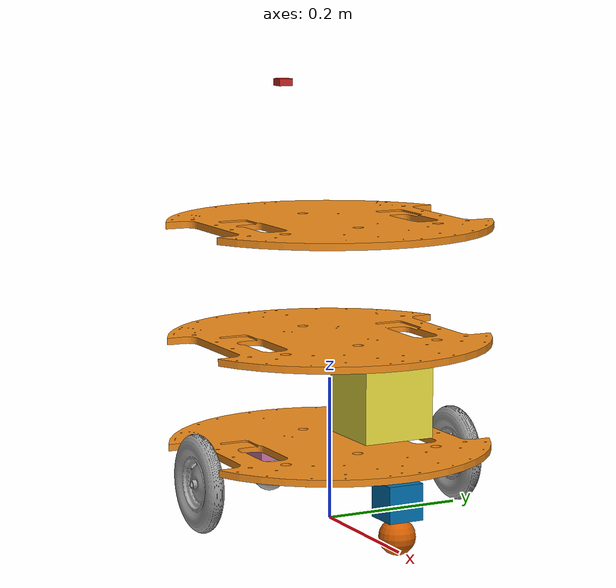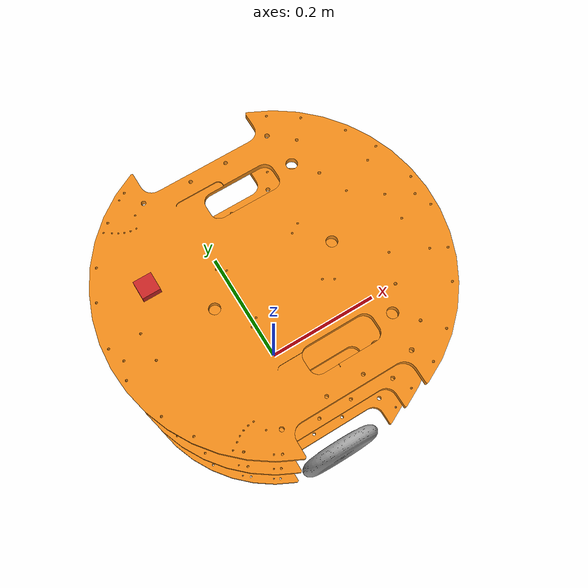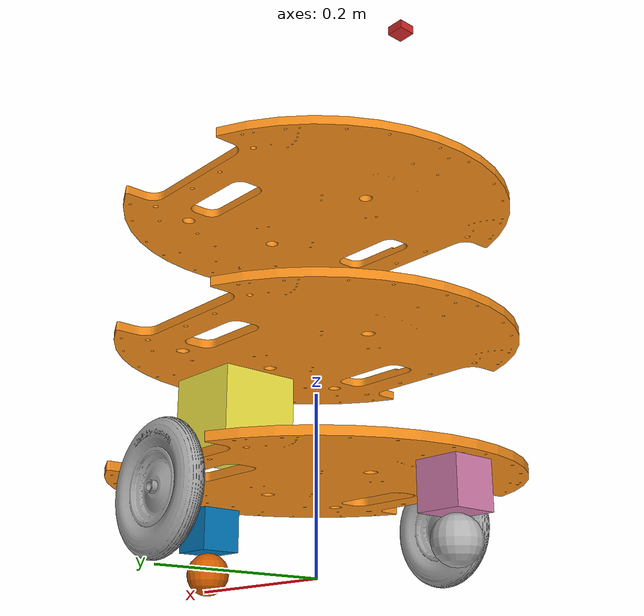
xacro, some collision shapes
<?xml version="1.0"?>

<robot name="robko18" xmlns:xacro="http://www.ros.org/wiki/xacro">

  <xacro:include filename="$(find robko18_description)/urdf/robko18.gazebo" />
  <xacro:include filename="$(find robko18_description)/urdf/materials.xacro" />
  <xacro:include filename="$(find robko18_description)/urdf/macros.xacro" />
  <!-- 3D Sensors -->

  <!-- ####### generic constants ##### -->
  <!--All units in m-kg-s-radians unit system -->

  <xacro:property name="M_PI" value="3.1415926535897931" />
  <xacro:property name="M_PI_2" value="1.570796327" />
  <xacro:property name="DEG_TO_RAD" value="0.017453293" />
  <xacro:property name="SCALE_in_m" value="0.0254"/> <!--inches to meters-->
  <xacro:property name="SCALE_mm_m" value="0.001"/> <!--milimeters to meters-->

   <!-- robot constants -->

    <!-- Main body radius and height -->
  <!-- base_link - Base Plate/Deck Cylinder base   -->
  <xacro:property name="base_from_base_frame_Z_offset" value="0.10"/>
  <xacro:property name="base_height" value="${0.375*SCALE_in_m}" />
  <xacro:property name="base_radius" value="${17.75*SCALE_in_m/2}" />
  <!-- in kg weight with the battery holder plate bellow -->
  <xacro:property name="base_mass" value="1.75" />

   <!-- distance between the robot origin and the bottom of the base plate along the z axis (robot up) -->
  <xacro:property name="BASE_PLATE_FROM_BASE_FRAME_Z_OFFSET" value="${0.10+(base_height/2)}" /> <!-- meters -->

 <!-- second_deck - Base Plate/Deck Cylinder base   -->
  <xacro:property name="second_deck_from_base_link_Z_offset" value="${0.145+(second_deck_height/2)}"/>
  <xacro:property name="second_deck_height" value="${0.375*SCALE_in_m}" />
  <xacro:property name="second_deck_radius" value="${17.75*SCALE_in_m/2}" />
  <xacro:property name="second_deck_mass" value="1.5" />   <!-- in kg -->

  <!-- third_deck - Base Plate/Deck Cylinder base   -->
  <xacro:property name="third_deck_from_second_deck_Z_offset" value="${0.156+(third_deck_height/2)}"/>
  <xacro:property name="third_deck_height" value="${0.375*SCALE_in_m}" />
  <xacro:property name="third_deck_radius" value="${17.75*SCALE_in_m/2}" />
  <xacro:property name="third_deck_mass" value="1.5" />   <!-- in kg -->

 <!-- kinect_mount_point - joint data for maunting kinect relative to base_link  -->
  <xacro:property name="kinect_mount_point_from_base_link_Z_offset" value="0.50" />
  <xacro:property name="kinect_mount_point_from_base_link_X_offset" value="-${0.14509}"/>
  <xacro:property name="kinect_support_height" value="0.02" />
  <xacro:property name="kinect_support_width" value="0.01" />
  <xacro:property name="kinect_support_lenght" value="0.02" />
  <xacro:property name="kinect_support_mass" value=".05" />    <!--in kg-->

  <!-- Wheels -->
  <xacro:property name="wheel_diameter" value="${6*SCALE_in_m}"/>
  <xacro:property name="wheel_radius" value="${wheel_diameter/2}"/>
  <xacro:property name="wheel_width" value="0.03"/><!--set to tyre width-->
  <xacro:property name="wheel_mass" value="0.6" /> --> <!-- ???? in kg-->
  <xacro:property name="base_x_origin_to_wheel_origin" value="0.0" />
  <xacro:property name="base_y_origin_to_wheel_origin" value="0.2" />
  <xacro:property name="base_z_origin_to_wheel_origin" value="${BASE_PLATE_FROM_BASE_FRAME_Z_OFFSET - wheel_radius}" />

  <!-- caster wheel offsets from base origin -->
  <xacro:property name="caster_X_offset_from_base_link" value="0.17"/>
  <!-- caster wheel radius and height -->
  <!-- caster wheel mass -->
  <xacro:property name="caster_box_mass" value="0.15" /> <!-- in kg-->
  <xacro:property name="caster_box_height" value="0.05" />
  <xacro:property name="caster_box_width" value="0.05" />
  <xacro:property name="caster_box_lenght" value="0.05" />
  <xacro:property name="caster_sphere_mass" value="0.15" /> <!-- in kg-->
  <xacro:property name="caster_sphere_diameter" value="0.05" />
  <xacro:property name="caster_sphere_radius" value="${caster_sphere_diameter/2}" />

  <!-- SENSORS -->
  <!-- Hokuyo Laser scanner -->
  <xacro:property name="hokuyo_size" value="0.05" />
    <!-- camera -->
  <xacro:property name="cameraSize" value="0.05"/>
  <xacro:property name="cameraMass" value="0.1"/>

 <!-- base_footprint is a fictitious link(frame) that is on the ground right below base_link origin -->
  <link name="base_footprint">
    <inertial>
      <mass value="0.0001"/>
      <origin xyz="0 0 0"/>
      <inertia ixx="0.0001" ixy="0.0" ixz="0.0" iyy="0.0001" iyz="0.0" izz="0.0001"/>
    </inertial>
    <visual>
      <origin rpy="0 0 0" xyz="0 0 0"/>
      <geometry>
        <box size="0.001 0.001 0.001"/>
      </geometry>
      <material name="red"/>
    </visual>
  </link>
  <gazebo reference="base_footprint">
    <turnGravityOff>false</turnGravityOff>
  </gazebo>

  <!-- JOINT BASE_LINK TO BASE_FRAME-->
  <joint name="base_footprint_base_link_joint" type="fixed">
    <origin rpy="0 0 0" xyz="0 0 ${base_from_base_frame_Z_offset}"/>
    <parent link="base_footprint"/>
    <child link="base_link"/>
  </joint>

  <!-- BASE-LINK -->
  <!--Center on the bottom side of the base plate of the robot-->

  <link name="base_link">
    <pose>0 0 0.1 0 0 0</pose>

    <inertial>
      <mass value="${base_mass}"/>
      <origin xyz="0.0 0 0.1" rpy=" 0 0 0"/>
      <inertia
          ixx="0.1" ixy="0" ixz="0"
          iyy="0.1" iyz="0"
          izz="0.1"
      />
    </inertial>

    <collision name="collision">
      <geometry>
       <cylinder radius="${base_radius}" length="${base_height}"/>
      </geometry>
    </collision>

    <visual name="base_visual">
      <origin xyz="0 0 0" rpy="${M_PI_2} 0 ${M_PI_2}"/>
      <geometry>
        <mesh filename="package://robko18_description/meshes/ArloBottomplateTST.dae" scale="0.001 0.001 0.001"/>

      </geometry>
      <material name="orange"/>
    </visual>

  </link>

  <link name="left_wheel">
    <collision name="collision">
      <origin xyz="0 0 0" rpy="0 1.5707 1.5707"/>
      <geometry>
        <cylinder radius="${wheel_radius}" length="${wheel_width}"/>
      </geometry>
    </collision>
    <visual name="left_wheel_visual">
      <origin xyz="0 0 0" rpy="0 0 1.5707"/>
      <geometry>
        <mesh filename="package://robko18_description/meshes/wheel.dae" scale="0.0012 0.0012 0.0012"/>

      </geometry>
    </visual>
    <inertial>
      <origin xyz="0 0 0" rpy="0 1.5707 1.5707"/>
      <mass value="5"/>
      <inertia
        ixx=".1" ixy="0.0" ixz="0.0"
        iyy=".1" iyz="0.0"
        izz=".1"/>
    </inertial>
  </link>

  <link name="right_wheel">
    <collision name="collision">
      <origin xyz="0 0 0" rpy="0 1.5707 1.5707"/>
      <geometry>
        <cylinder radius="${wheel_radius}" length="${wheel_width}"/>
      </geometry>
    </collision>
    <visual name="right_wheel_visual">
      <origin xyz="0 0 0" rpy="0 0 1.5707"/>
      <geometry>
        <mesh filename="package://robko18_description/meshes/wheel.dae" scale="0.0012 0.0012 0.0012"/>

      </geometry>
    </visual>
    <inertial>
      <origin xyz="0 0 0" rpy="0 1.5707 1.5707"/>
      <mass value="5"/>
      <inertia
        ixx=".1" ixy="0.0" ixz="0.0"
        iyy=".1" iyz="0.0"
        izz=".1"/>
    </inertial>
  </link>

  <joint type="continuous" name="left_wheel_hinge">
    <origin xyz="0 ${base_y_origin_to_wheel_origin} -${base_z_origin_to_wheel_origin}" rpy="0 0 0"/>

    <child link="left_wheel"/>
    <parent link="base_link"/>
    <axis xyz="0 1 0" rpy="0 0 0"/>
    <limit effort="10000" velocity="1000"/>
    <joint_properties damping="1.0" friction="1.0"/>
  </joint>

  <joint type="continuous" name="right_wheel_hinge">
    <origin xyz="0 -${base_y_origin_to_wheel_origin} -${base_z_origin_to_wheel_origin}" rpy="0 0 0"/>
    <child link="right_wheel"/>
    <parent link="base_link"/>
    <axis xyz="0 1 0" rpy="0 0 0"/>
    <limit effort="10000" velocity="1000"/>
    <joint_properties damping="1.0" friction="1.0"/>
  </joint>

<!--###########caster front #############################-->
  <link name="caster_box_front">
    <collision name="collision">
      <origin xyz="0 0 0" rpy="0 0 0"/>
      <geometry>
        <box size="${caster_box_width} ${caster_box_height} ${caster_box_lenght}"/>
      </geometry>
    </collision>
    <visual name="caster_box_front_visual">
      <origin xyz="0 0 0" rpy="0 0 0"/>
      <geometry>
        <box size="${caster_box_width} ${caster_box_height} ${caster_box_lenght}"/>
      </geometry>
    </visual>
    <inertial>
      <origin xyz="0 0 0" rpy="0 0 0"/>
      <mass value="0.15"/>
      <inertia
        ixx=".1" ixy="0.0" ixz="0.0"
        iyy=".1" iyz="0.0"
        izz=".1"/>
    </inertial>
  </link>

    <!-- JOINT caster_box_front TO base_link-->
  <joint name="base_caster_box_front_joint" type="fixed">
  <!-- NB: Z goes to - as we are below bottom deck(base)-->
    <origin rpy="0 0 0" xyz="${caster_X_offset_from_base_link+caster_box_lenght/2} 0 -${caster_box_height/2+base_height/2}"/>
    <parent link="base_link"/>
    <child link="caster_box_front"/>
  </joint>
    <link name="caster_sphere_front">
    <collision name="collision">
      <origin xyz="0 0 0" rpy="0 0 0"/>
      <geometry>
        <sphere radius="${caster_sphere_radius}"/>
      </geometry>
    </collision>
    <visual name="caster_sphere_front_visual">
      <origin xyz="0 0 0" rpy="0 0 0"/>
      <geometry>
        <sphere radius="${caster_sphere_radius}"/>
      </geometry>
    </visual>
    <inertial>
      <origin xyz="0 0 0" rpy="0 0 0"/>
      <mass value="0.15"/>
      <inertia
        ixx=".1" ixy="0.0" ixz="0.0"
        iyy=".1" iyz="0.0"
        izz=".1"/>
    </inertial>
  </link>

    <!-- JOINT caster_sphere_front TO caster_box_front-->
  <joint name="caster_box_front_caster_sphere_front_joint" type="fixed">
  <!-- NB: Z goes to - as we are below bottom deck(base)-->
    <origin rpy="0 0 0" xyz="0 0 -${caster_box_lenght/2+caster_sphere_radius}"/>
    <parent link="caster_box_front"/>
    <child link="caster_sphere_front"/>
  </joint>

<!--###########caster back #############################-->
  <link name="caster_box_back">
    <collision name="collision">
      <origin xyz="0 0 0" rpy="0 0 0"/>
      <geometry>
        <box size="${caster_box_width} ${caster_box_height} ${caster_box_lenght}"/>
      </geometry>
    </collision>
    <visual name="caster_box_back_visual">
      <origin xyz="0 0 0" rpy="0 0 0"/>
      <geometry>
        <box size="${caster_box_width} ${caster_box_height} ${caster_box_lenght}"/>
      </geometry>
    </visual>
    <inertial>
      <origin xyz="0 0 0" rpy="0 0 0"/>
      <mass value="0.15"/>
      <inertia
        ixx=".1" ixy="0.0" ixz="0.0"
        iyy=".1" iyz="0.0"
        izz=".1"/>
    </inertial>
  </link>

    <!-- JOINT caster_box_back TO base_link-->
  <joint name="base_caster_box_back_joint" type="fixed">
  <!-- NB: Z goes to - as we are below bottom deck(base)-->
    <origin rpy="0 0 0" xyz="-${caster_X_offset_from_base_link+caster_box_lenght/2} 0 -${caster_box_height/2+base_height/2}"/>
    <parent link="base_link"/>
    <child link="caster_box_back"/>
  </joint>
    <link name="caster_sphere_back">
    <collision name="collision">
      <origin xyz="0 0 0" rpy="0 0 0"/>
      <geometry>
        <sphere radius="${caster_sphere_radius}"/>
      </geometry>
    </collision>
    <visual name="caster_sphere_back_visual">
      <origin xyz="0 0 0" rpy="0 0 0"/>
      <geometry>
        <sphere radius="${caster_sphere_radius}"/>
      </geometry>
    </visual>
    <inertial>
      <origin xyz="0 0 0" rpy="0 0 0"/>
      <mass value="0.15"/>
      <inertia
        ixx=".1" ixy="0.0" ixz="0.0"
        iyy=".1" iyz="0.0"
        izz=".1"/>
    </inertial>
  </link>

    <!-- JOINT caster_sphere_back TO caster_box_back-->
  <joint name="caster_box_back_caster_sphere_back_joint" type="fixed">
  <!-- NB: Z goes to - as we are below bottom deck(base)-->
    <origin rpy="0 0 0" xyz="0 0 -${caster_box_lenght/2+caster_sphere_radius}"/>
    <parent link="caster_box_back"/>
    <child link="caster_sphere_back"/>
  </joint>

<!--######### SECOND DECK ###############################-->

  <!-- JOINT second_deck TO BASE_LINK -->
  <joint name="base_link_second_deck_joint" type="fixed">
    <origin rpy="0 0 0" xyz="0 0 ${second_deck_from_base_link_Z_offset}"/>
    <parent link="base_link"/>
    <child link="second_deck"/>
  </joint>

  <!--Centered on the bottom side of the second deck/plate of the robot-->

  <link name="second_deck">
    <pose>0 0 0.1 0 0 0</pose>

    <inertial>
      <mass value="${second_deck_mass}"/>
      <origin xyz="0.0 0 0.1" rpy=" 0 0 0"/>
      <inertia
          ixx="0.1" ixy="0" ixz="0"
          iyy="0.1" iyz="0"
          izz="0.1"
      />
    </inertial>

    <collision name="collision">
      <geometry>
       <cylinder radius="${second_deck_radius}" length="${second_deck_height}"/>
      </geometry>
    </collision>

    <visual name="second_deck_visual">
      <origin xyz="0 0 0" rpy="${M_PI_2} 0 ${M_PI_2}"/>
      <geometry>
        <mesh filename="package://robko18_description/meshes/ArloBottomplateTST.dae" scale="0.001 0.001 0.001"/>

      </geometry>
      <material name="orange"/>
    </visual>

  </link>

<!--######### THIRD DECK ###############################-->

  <!-- JOINT THIRD_DECK TO SECOND_DECK -->
  <joint name="third_deck_second_deck_joint" type="fixed">
    <origin rpy="0 0 0" xyz="0 0 ${third_deck_from_second_deck_Z_offset}"/>
    <parent link="second_deck"/>
    <child link="third_deck"/>
  </joint>

  <!--Center on the bottom side of the base plate of the robot-->

  <link name="third_deck">
    <pose>0 0 0.1 0 0 0</pose>

    <inertial>
      <mass value="${third_deck_mass}"/>
      <origin xyz="0.0 0 0.1" rpy=" 0 0 0"/>
      <inertia
          ixx="0.1" ixy="0" ixz="0"
          iyy="0.1" iyz="0"
          izz="0.1"
      />
    </inertial>

    <collision name="collision">
      <geometry>
       <cylinder radius="${third_deck_radius}" length="${third_deck_height}"/>
      </geometry>
    </collision>

    <visual name="third_deck__visual">
      <origin xyz="0 0 0" rpy="${M_PI_2} 0 ${M_PI_2}"/>
      <geometry>
        <mesh filename="package://robko18_description/meshes/ArloBottomplateTST.dae" scale="0.001 0.001 0.001"/>
      </geometry>
      <material name="orange"/>
    </visual>

  </link>

<!--######### KINECT SUPPORT ###############################-->

  <!-- JOINT KINECT_SUPPORT TO BASE_LINK -->
  <joint name="Kinect_support_to_base_link_joint" type="fixed">
    <origin rpy="0 0 0" xyz="${kinect_mount_point_from_base_link_X_offset} 0 ${kinect_mount_point_from_base_link_Z_offset}"/>
    <parent link="base_link"/>
    <child link="kinect_support"/>
  </joint>

  <!--BASE LINK IS AT center on the bottom side of the base deck/plate of the robot-->

  <link name="kinect_support">
    <pose>0 0 0.1 0 0 0</pose>

    <inertial>
      <mass value="${kinect_support_mass}"/>
      <origin xyz="0.0 0 0.1" rpy=" 0 0 0"/>
      <inertia
          ixx="0.1" ixy="0" ixz="0"
          iyy="0.1" iyz="0"
          izz="0.1"
      />
    </inertial>

    <collision name="collision">
      <geometry>
        <box size="${kinect_support_height} ${kinect_support_lenght} ${kinect_support_width}" />
      </geometry>
    </collision>

    <visual name="kinect_support__visual">
      <origin xyz="0 0 0" rpy="0 0 0"/>
      <geometry>
        <box size="${kinect_support_height} ${kinect_support_lenght} ${kinect_support_width}" />
      </geometry>
      <material name="red"/>
    </visual>

  </link>

<!--############# CAMERA ###########################-->

<!--############### HOUYO LASER ##################-->

  <joint name="hokuyo_joint" type="fixed">
    <axis xyz="0 1 0" />
    <origin xyz=".15 0 .1" rpy="0 0 0"/>
    <parent link="base_link"/>
    <child link="hokuyo"/>
  </joint>

  <!-- Hokuyo Laser -->
  <link name="hokuyo">
    <collision>
      <origin xyz="0 0 0" rpy="0 0 0"/>
      <geometry>
    <box size="0.1 0.1 0.1"/>
      </geometry>
    </collision>

    <visual>
      <origin xyz="0 0 0" rpy="0 0 0"/>
      <geometry>
        <mesh filename="package://robko18_description/meshes/hokuyo.dae"/>
      </geometry>
    </visual>

    <inertial>
      <mass value="1e-5" />
      <origin xyz="0 0 0" rpy="0 0 0"/>
      <inertia ixx="1e-6" ixy="0" ixz="0" iyy="1e-6" iyz="0" izz="1e-6" />
    </inertial>
  </link>

  <link name="arm_maunt_point">
    <inertial>
      <mass value="0.0001"/>
      <origin xyz="0 0 0"/>
      <inertia ixx="0.0001" ixy="0.0" ixz="0.0" iyy="0.0001" iyz="0.0" izz="0.0001"/>
    </inertial>
    <visual>
      <origin rpy="0 0 0" xyz="0 0 0"/>
      <geometry>
        <box size="0.001 0.001 0.001"/>
      </geometry>
      <material name="red"/>
    </visual>
  </link>

  <!-- mover4_arm_mount_point - offset data for maunting the arm relative to base_link  -->
  <xacro:property name="arm_mount_point_from_base_frame_X_offset" value="0.15"/>
    <xacro:property name="arm_mount_point_from_base_frame_Z_offset" value="0.4"/>

  <!-- JOINT  arm_maunt_point TO BASE_LINK -->
  <joint name="base_footprint_arm_maunt_point_joint" type="fixed">
    <origin rpy="0 0 0" xyz="${arm_mount_point_from_base_frame_X_offset} 0 ${arm_mount_point_from_base_frame_Z_offset}"/>
    <parent link="base_footprint"/>
    <child link="arm_maunt_point"/>
  </joint>

</robot>
